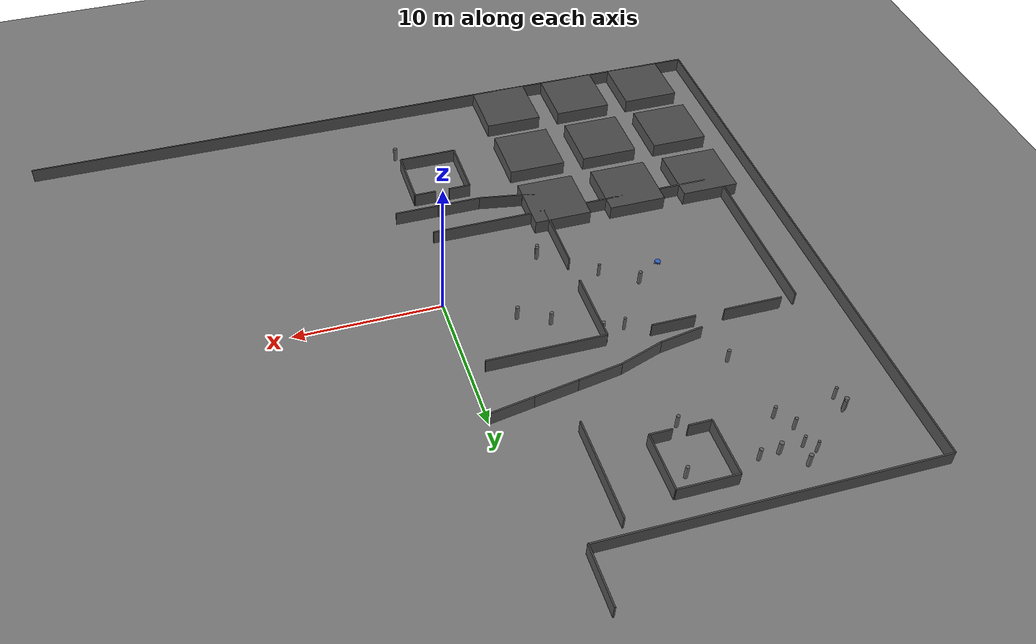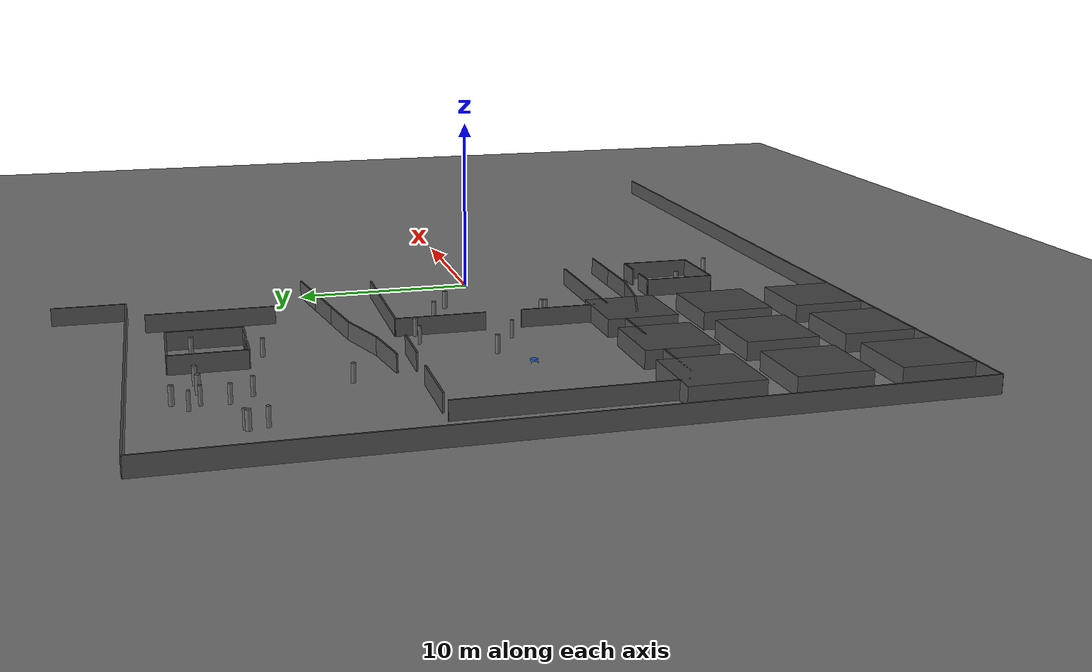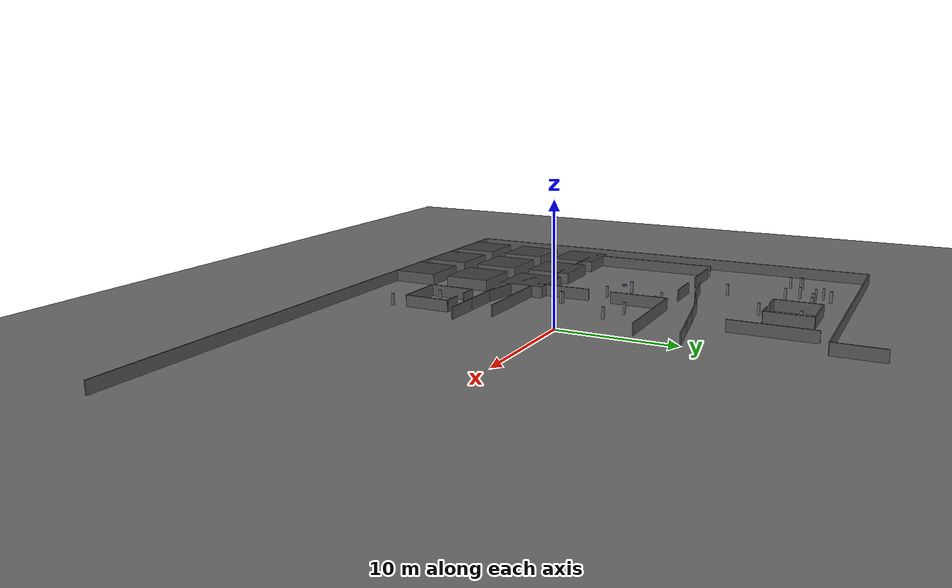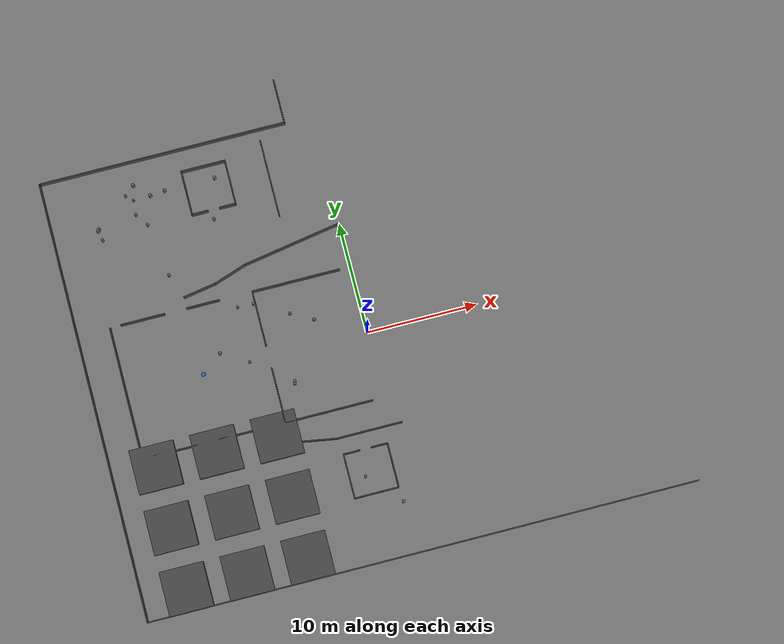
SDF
<sdf version="1.9">
 <world name="maze_large">
  <model name="ground">
   <static>true</static>
   <link name="link">
    <collision name="collision">
     <geometry><plane><normal>0 0 1</normal><size>75 60</size></plane></geometry>
    </collision>
    <visual name="visual">
     <geometry><plane><normal>0 0 1</normal><size>75 60</size></plane></geometry>
     <material><ambient>0.5 0.5 0.5 1</ambient><diffuse>0.5 0.5 0.5 1</diffuse></material>
    </visual>
   </link>
  </model>
  <model name="border_top_l">
   <static>true</static>
   <pose>-13.75 20.0 0.5 0 0 0.0</pose>
   <link name="wall">
    <collision name="collision"><geometry><box><size>22.5 0.1 1.0</size></box></geometry></collision>
    <visual name="visual">
     <geometry><box><size>22.5 0.1 1.0</size></box></geometry>
     <material><ambient>0.3 0.3 0.3 1</ambient><diffuse>0.3 0.3 0.3 1</diffuse></material>
    </visual>
   </link>
  </model>
  <model name="border_bottom">
   <static>true</static>
   <pose>0.0 -20.0 0.5 0 0 0.0</pose>
   <link name="wall">
    <collision name="collision"><geometry><box><size>50.0 0.1 1.0</size></box></geometry></collision>
    <visual name="visual">
     <geometry><box><size>50.0 0.1 1.0</size></box></geometry>
     <material><ambient>0.3 0.3 0.3 1</ambient><diffuse>0.3 0.3 0.3 1</diffuse></material>
    </visual>
   </link>
  </model>
  <model name="border_left">
   <static>true</static>
   <pose>-25.0 0.0 0.5 0 0 0.0</pose>
   <link name="wall">
    <collision name="collision"><geometry><box><size>0.1 40.0 1.0</size></box></geometry></collision>
    <visual name="visual">
     <geometry><box><size>0.1 40.0 1.0</size></box></geometry>
     <material><ambient>0.3 0.3 0.3 1</ambient><diffuse>0.3 0.3 0.3 1</diffuse></material>
    </visual>
   </link>
  </model>
  <model name="alcove_left">
   <static>true</static>
   <pose>-2.5 22.0 0.5 0 0 0.0</pose>
   <link name="wall">
    <collision name="collision"><geometry><box><size>0.1 4.0 1.0</size></box></geometry></collision>
    <visual name="visual">
     <geometry><box><size>0.1 4.0 1.0</size></box></geometry>
     <material><ambient>0.3 0.3 0.3 1</ambient><diffuse>0.3 0.3 0.3 1</diffuse></material>
    </visual>
   </link>
  </model>
  <model name="plaza_top_l">
   <static>true</static>
   <pose>-5.0 6.0 0.5 0 0 0.0</pose>
   <link name="wall">
    <collision name="collision"><geometry><box><size>8.0 0.1 1.0</size></box></geometry></collision>
    <visual name="visual">
     <geometry><box><size>8.0 0.1 1.0</size></box></geometry>
     <material><ambient>0.3 0.3 0.3 1</ambient><diffuse>0.3 0.3 0.3 1</diffuse></material>
    </visual>
   </link>
  </model>
  <model name="plaza_bot_l">
   <static>true</static>
   <pose>-5.0 -6.0 0.5 0 0 0.0</pose>
   <link name="wall">
    <collision name="collision"><geometry><box><size>8.0 0.1 1.0</size></box></geometry></collision>
    <visual name="visual">
     <geometry><box><size>8.0 0.1 1.0</size></box></geometry>
     <material><ambient>0.3 0.3 0.3 1</ambient><diffuse>0.3 0.3 0.3 1</diffuse></material>
    </visual>
   </link>
  </model>
  <model name="plaza_left_t">
   <static>true</static>
   <pose>-9.0 3.5 0.5 0 0 0.0</pose>
   <link name="wall">
    <collision name="collision"><geometry><box><size>0.1 5.0 1.0</size></box></geometry></collision>
    <visual name="visual">
     <geometry><box><size>0.1 5.0 1.0</size></box></geometry>
     <material><ambient>0.3 0.3 0.3 1</ambient><diffuse>0.3 0.3 0.3 1</diffuse></material>
    </visual>
   </link>
  </model>
  <model name="plaza_left_b">
   <static>true</static>
   <pose>-9.0 -3.5 0.5 0 0 0.0</pose>
   <link name="wall">
    <collision name="collision"><geometry><box><size>0.1 5.0 1.0</size></box></geometry></collision>
    <visual name="visual">
     <geometry><box><size>0.1 5.0 1.0</size></box></geometry>
     <material><ambient>0.3 0.3 0.3 1</ambient><diffuse>0.3 0.3 0.3 1</diffuse></material>
    </visual>
   </link>
  </model>
  <model name="plaza_p_1">
   <static>true</static>
   <pose>-4.3 2.25 0.5 0 0 0</pose>
   <link name="p">
    <collision name="c">
     <geometry><cylinder><radius>0.13</radius><length>1.0</length></cylinder></geometry>
    </collision>
    <visual name="v">
     <geometry><cylinder><radius>0.13</radius><length>1.0</length></cylinder></geometry>
     <material><ambient>0.4 0.4 0.4 1</ambient><diffuse>0.4 0.4 0.4 1</diffuse></material>
    </visual>
   </link>
  </model>
  <model name="plaza_p_3">
   <static>true</static>
   <pose>-7.3 -2.65 0.5 0 0 0</pose>
   <link name="p">
    <collision name="c">
     <geometry><cylinder><radius>0.12</radius><length>1.0</length></cylinder></geometry>
    </collision>
    <visual name="v">
     <geometry><cylinder><radius>0.12</radius><length>1.0</length></cylinder></geometry>
     <material><ambient>0.4 0.4 0.4 1</ambient><diffuse>0.4 0.4 0.4 1</diffuse></material>
    </visual>
   </link>
  </model>
  <model name="plaza_p_4">
   <static>true</static>
   <pose>-7.35 -2.85 0.5 0 0 0</pose>
   <link name="p">
    <collision name="c">
     <geometry><cylinder><radius>0.1275</radius><length>1.0</length></cylinder></geometry>
    </collision>
    <visual name="v">
     <geometry><cylinder><radius>0.1275</radius><length>1.0</length></cylinder></geometry>
     <material><ambient>0.4 0.4 0.4 1</ambient><diffuse>0.4 0.4 0.4 1</diffuse></material>
    </visual>
   </link>
  </model>
  <model name="plaza_p_9">
   <static>true</static>
   <pose>-6.25 3.3 0.5 0 0 0</pose>
   <link name="p">
    <collision name="c">
     <geometry><cylinder><radius>0.125</radius><length>1.0</length></cylinder></geometry>
    </collision>
    <visual name="v">
     <geometry><cylinder><radius>0.125</radius><length>1.0</length></cylinder></geometry>
     <material><ambient>0.4 0.4 0.4 1</ambient><diffuse>0.4 0.4 0.4 1</diffuse></material>
    </visual>
   </link>
  </model>
  <model name="corr_l_out">
   <static>true</static>
   <pose>-22.0 0.0 0.5 0 0 0.0</pose>
   <link name="wall">
    <collision name="collision"><geometry><box><size>0.1 12.0 1.0</size></box></geometry></collision>
    <visual name="visual">
     <geometry><box><size>0.1 12.0 1.0</size></box></geometry>
     <material><ambient>0.3 0.3 0.3 1</ambient><diffuse>0.3 0.3 0.3 1</diffuse></material>
    </visual>
   </link>
  </model>
  <model name="corr_l_top_l">
   <static>true</static>
   <pose>-19.0 6.0 0.5 0 0 0.0</pose>
   <link name="wall">
    <collision name="collision"><geometry><box><size>4.0 0.1 1.0</size></box></geometry></collision>
    <visual name="visual">
     <geometry><box><size>4.0 0.1 1.0</size></box></geometry>
     <material><ambient>0.3 0.3 0.3 1</ambient><diffuse>0.3 0.3 0.3 1</diffuse></material>
    </visual>
   </link>
  </model>
  <model name="corr_l_top_r">
   <static>true</static>
   <pose>-13.5 6.0 0.5 0 0 0.0</pose>
   <link name="wall">
    <collision name="collision"><geometry><box><size>3.0 0.1 1.0</size></box></geometry></collision>
    <visual name="visual">
     <geometry><box><size>3.0 0.1 1.0</size></box></geometry>
     <material><ambient>0.3 0.3 0.3 1</ambient><diffuse>0.3 0.3 0.3 1</diffuse></material>
    </visual>
   </link>
  </model>
  <model name="corr_l_bot_l">
   <static>true</static>
   <pose>-19.0 -6.0 0.5 0 0 0.0</pose>
   <link name="wall">
    <collision name="collision"><geometry><box><size>4.0 0.1 1.0</size></box></geometry></collision>
    <visual name="visual">
     <geometry><box><size>4.0 0.1 1.0</size></box></geometry>
     <material><ambient>0.3 0.3 0.3 1</ambient><diffuse>0.3 0.3 0.3 1</diffuse></material>
    </visual>
   </link>
  </model>
  <model name="corr_l_bot_r">
   <static>true</static>
   <pose>-13.5 -6.0 0.5 0 0 0.0</pose>
   <link name="wall">
    <collision name="collision"><geometry><box><size>3.0 0.1 1.0</size></box></geometry></collision>
    <visual name="visual">
     <geometry><box><size>3.0 0.1 1.0</size></box></geometry>
     <material><ambient>0.3 0.3 0.3 1</ambient><diffuse>0.3 0.3 0.3 1</diffuse></material>
    </visual>
   </link>
  </model>
  <model name="pf_left_0">
   <static>true</static>
   <pose>-15.7 16.65 0.5 0 0 0</pose>
   <link name="p">
    <collision name="c">
     <geometry><cylinder><radius>0.1425</radius><length>1.0</length></cylinder></geometry>
    </collision>
    <visual name="v">
     <geometry><cylinder><radius>0.1425</radius><length>1.0</length></cylinder></geometry>
     <material><ambient>0.4 0.4 0.4 1</ambient><diffuse>0.4 0.4 0.4 1</diffuse></material>
    </visual>
   </link>
  </model>
  <model name="pf_left_1">
   <static>true</static>
   <pose>-17.85 17.15 0.5 0 0 0</pose>
   <link name="p">
    <collision name="c">
     <geometry><cylinder><radius>0.09</radius><length>1.0</length></cylinder></geometry>
    </collision>
    <visual name="v">
     <geometry><cylinder><radius>0.09</radius><length>1.0</length></cylinder></geometry>
     <material><ambient>0.4 0.4 0.4 1</ambient><diffuse>0.4 0.4 0.4 1</diffuse></material>
    </visual>
   </link>
  </model>
  <model name="pf_left_2">
   <static>true</static>
   <pose>-20.8 14.85 0.5 0 0 0</pose>
   <link name="p">
    <collision name="c">
     <geometry><cylinder><radius>0.0925</radius><length>1.0</length></cylinder></geometry>
    </collision>
    <visual name="v">
     <geometry><cylinder><radius>0.0925</radius><length>1.0</length></cylinder></geometry>
     <material><ambient>0.4 0.4 0.4 1</ambient><diffuse>0.4 0.4 0.4 1</diffuse></material>
    </visual>
   </link>
  </model>
  <model name="pf_left_3">
   <static>true</static>
   <pose>-20.75 13.8 0.5 0 0 0</pose>
   <link name="p">
    <collision name="c">
     <geometry><cylinder><radius>0.105</radius><length>1.0</length></cylinder></geometry>
    </collision>
    <visual name="v">
     <geometry><cylinder><radius>0.105</radius><length>1.0</length></cylinder></geometry>
     <material><ambient>0.4 0.4 0.4 1</ambient><diffuse>0.4 0.4 0.4 1</diffuse></material>
    </visual>
   </link>
  </model>
  <model name="pf_left_4">
   <static>true</static>
   <pose>-17.35 15.25 0.5 0 0 0</pose>
   <link name="p">
    <collision name="c">
     <geometry><cylinder><radius>0.11</radius><length>1.0</length></cylinder></geometry>
    </collision>
    <visual name="v">
     <geometry><cylinder><radius>0.11</radius><length>1.0</length></cylinder></geometry>
     <material><ambient>0.4 0.4 0.4 1</ambient><diffuse>0.4 0.4 0.4 1</diffuse></material>
    </visual>
   </link>
  </model>
  <model name="pf_left_5">
   <static>true</static>
   <pose>-20.95 14.7 0.5 0 0 0</pose>
   <link name="p">
    <collision name="c">
     <geometry><cylinder><radius>0.145</radius><length>1.0</length></cylinder></geometry>
    </collision>
    <visual name="v">
     <geometry><cylinder><radius>0.145</radius><length>1.0</length></cylinder></geometry>
     <material><ambient>0.4 0.4 0.4 1</ambient><diffuse>0.4 0.4 0.4 1</diffuse></material>
    </visual>
   </link>
  </model>
  <model name="pf_left_6">
   <static>true</static>
   <pose>-17.25 16.6 0.5 0 0 0</pose>
   <link name="p">
    <collision name="c">
     <geometry><cylinder><radius>0.0975</radius><length>1.0</length></cylinder></geometry>
    </collision>
    <visual name="v">
     <geometry><cylinder><radius>0.0975</radius><length>1.0</length></cylinder></geometry>
     <material><ambient>0.4 0.4 0.4 1</ambient><diffuse>0.4 0.4 0.4 1</diffuse></material>
    </visual>
   </link>
  </model>
  <model name="pf_left_7">
   <static>true</static>
   <pose>-16.55 14.15 0.5 0 0 0</pose>
   <link name="p">
    <collision name="c">
     <geometry><cylinder><radius>0.11</radius><length>1.0</length></cylinder></geometry>
    </collision>
    <visual name="v">
     <geometry><cylinder><radius>0.11</radius><length>1.0</length></cylinder></geometry>
     <material><ambient>0.4 0.4 0.4 1</ambient><diffuse>0.4 0.4 0.4 1</diffuse></material>
    </visual>
   </link>
  </model>
  <model name="pf_left_8">
   <static>true</static>
   <pose>-14.35 16.75 0.5 0 0 0</pose>
   <link name="p">
    <collision name="c">
     <geometry><cylinder><radius>0.1225</radius><length>1.0</length></cylinder></geometry>
    </collision>
    <visual name="v">
     <geometry><cylinder><radius>0.1225</radius><length>1.0</length></cylinder></geometry>
     <material><ambient>0.4 0.4 0.4 1</ambient><diffuse>0.4 0.4 0.4 1</diffuse></material>
    </visual>
   </link>
  </model>
  <model name="pf_left_9">
   <static>true</static>
   <pose>-16.95 17.9 0.5 0 0 0</pose>
   <link name="p">
    <collision name="c">
     <geometry><cylinder><radius>0.135</radius><length>1.0</length></cylinder></geometry>
    </collision>
    <visual name="v">
     <geometry><cylinder><radius>0.135</radius><length>1.0</length></cylinder></geometry>
     <material><ambient>0.4 0.4 0.4 1</ambient><diffuse>0.4 0.4 0.4 1</diffuse></material>
    </visual>
   </link>
  </model>
  <model name="room_a_bot_l">
   <static>true</static>
   <pose>-11.75 14.0 0.5 0 0 0.0</pose>
   <link name="wall">
    <collision name="collision"><geometry><box><size>1.5 0.1 1.0</size></box></geometry></collision>
    <visual name="visual">
     <geometry><box><size>1.5 0.1 1.0</size></box></geometry>
     <material><ambient>0.3 0.3 0.3 1</ambient><diffuse>0.3 0.3 0.3 1</diffuse></material>
    </visual>
   </link>
  </model>
  <model name="room_a_bot_r">
   <static>true</static>
   <pose>-9.25 14.0 0.5 0 0 0.0</pose>
   <link name="wall">
    <collision name="collision"><geometry><box><size>1.5 0.1 1.0</size></box></geometry></collision>
    <visual name="visual">
     <geometry><box><size>1.5 0.1 1.0</size></box></geometry>
     <material><ambient>0.3 0.3 0.3 1</ambient><diffuse>0.3 0.3 0.3 1</diffuse></material>
    </visual>
   </link>
  </model>
  <model name="room_a_top">
   <static>true</static>
   <pose>-10.5 18.0 0.5 0 0 0.0</pose>
   <link name="wall">
    <collision name="collision"><geometry><box><size>4.0 0.1 1.0</size></box></geometry></collision>
    <visual name="visual">
     <geometry><box><size>4.0 0.1 1.0</size></box></geometry>
     <material><ambient>0.3 0.3 0.3 1</ambient><diffuse>0.3 0.3 0.3 1</diffuse></material>
    </visual>
   </link>
  </model>
  <model name="room_a_left">
   <static>true</static>
   <pose>-12.5 16.0 0.5 0 0 0.0</pose>
   <link name="wall">
    <collision name="collision"><geometry><box><size>0.1 4.0 1.0</size></box></geometry></collision>
    <visual name="visual">
     <geometry><box><size>0.1 4.0 1.0</size></box></geometry>
     <material><ambient>0.3 0.3 0.3 1</ambient><diffuse>0.3 0.3 0.3 1</diffuse></material>
    </visual>
   </link>
  </model>
  <model name="room_a_right">
   <static>true</static>
   <pose>-8.5 16.0 0.5 0 0 0.0</pose>
   <link name="wall">
    <collision name="collision"><geometry><box><size>0.1 4.0 1.0</size></box></geometry></collision>
    <visual name="visual">
     <geometry><box><size>0.1 4.0 1.0</size></box></geometry>
     <material><ambient>0.3 0.3 0.3 1</ambient><diffuse>0.3 0.3 0.3 1</diffuse></material>
    </visual>
   </link>
  </model>
  <model name="room_a_pillar">
   <static>true</static>
   <pose>-9.75 16.75 0.5 0 0 0</pose>
   <link name="p">
    <collision name="c">
     <geometry><cylinder><radius>0.125</radius><length>1.0</length></cylinder></geometry>
    </collision>
    <visual name="v">
     <geometry><cylinder><radius>0.125</radius><length>1.0</length></cylinder></geometry>
     <material><ambient>0.4 0.4 0.4 1</ambient><diffuse>0.4 0.4 0.4 1</diffuse></material>
    </visual>
   </link>
  </model>
  <model name="room_c_bot">
   <static>true</static>
   <pose>-2.75 -14.0 0.5 0 0 0.0</pose>
   <link name="wall">
    <collision name="collision"><geometry><box><size>4.0 0.1 1.0</size></box></geometry></collision>
    <visual name="visual">
     <geometry><box><size>4.0 0.1 1.0</size></box></geometry>
     <material><ambient>0.3 0.3 0.3 1</ambient><diffuse>0.3 0.3 0.3 1</diffuse></material>
    </visual>
   </link>
  </model>
  <model name="room_c_top_l">
   <static>true</static>
   <pose>-4.0 -10.0 0.5 0 0 0.0</pose>
   <link name="wall">
    <collision name="collision"><geometry><box><size>1.5 0.1 1.0</size></box></geometry></collision>
    <visual name="visual">
     <geometry><box><size>1.5 0.1 1.0</size></box></geometry>
     <material><ambient>0.3 0.3 0.3 1</ambient><diffuse>0.3 0.3 0.3 1</diffuse></material>
    </visual>
   </link>
  </model>
  <model name="room_c_top_r">
   <static>true</static>
   <pose>-1.5 -10.0 0.5 0 0 0.0</pose>
   <link name="wall">
    <collision name="collision"><geometry><box><size>1.5 0.1 1.0</size></box></geometry></collision>
    <visual name="visual">
     <geometry><box><size>1.5 0.1 1.0</size></box></geometry>
     <material><ambient>0.3 0.3 0.3 1</ambient><diffuse>0.3 0.3 0.3 1</diffuse></material>
    </visual>
   </link>
  </model>
  <model name="room_c_left">
   <static>true</static>
   <pose>-4.75 -12.0 0.5 0 0 0.0</pose>
   <link name="wall">
    <collision name="collision"><geometry><box><size>0.1 4.0 1.0</size></box></geometry></collision>
    <visual name="visual">
     <geometry><box><size>0.1 4.0 1.0</size></box></geometry>
     <material><ambient>0.3 0.3 0.3 1</ambient><diffuse>0.3 0.3 0.3 1</diffuse></material>
    </visual>
   </link>
  </model>
  <model name="room_c_right">
   <static>true</static>
   <pose>-0.75 -12.0 0.5 0 0 0.0</pose>
   <link name="wall">
    <collision name="collision"><geometry><box><size>0.1 4.0 1.0</size></box></geometry></collision>
    <visual name="visual">
     <geometry><box><size>0.1 4.0 1.0</size></box></geometry>
     <material><ambient>0.3 0.3 0.3 1</ambient><diffuse>0.3 0.3 0.3 1</diffuse></material>
    </visual>
   </link>
  </model>
  <model name="room_c_pillar">
   <static>true</static>
   <pose>-3.35 -12.35 0.5 0 0 0</pose>
   <link name="p">
    <collision name="c">
     <geometry><cylinder><radius>0.125</radius><length>1.0</length></cylinder></geometry>
    </collision>
    <visual name="v">
     <geometry><cylinder><radius>0.125</radius><length>1.0</length></cylinder></geometry>
     <material><ambient>0.4 0.4 0.4 1</ambient><diffuse>0.4 0.4 0.4 1</diffuse></material>
    </visual>
   </link>
  </model>
  <model name="warehouse_left">
   <static>true</static>
   <pose>-5.0 15.5 0.5 0 0 0.0</pose>
   <link name="wall">
    <collision name="collision"><geometry><box><size>0.1 7.0 1.0</size></box></geometry></collision>
    <visual name="visual">
     <geometry><box><size>0.1 7.0 1.0</size></box></geometry>
     <material><ambient>0.3 0.3 0.3 1</ambient><diffuse>0.3 0.3 0.3 1</diffuse></material>
    </visual>
   </link>
  </model>
  <model name="grid_l_0_0">
   <static>true</static>
   <pose>-21.0 -18.0 0.5 0 0 0.0</pose>
   <link name="wall">
    <collision name="collision"><geometry><box><size>4.0 4.0 1.0</size></box></geometry></collision>
    <visual name="visual">
     <geometry><box><size>4.0 4.0 1.0</size></box></geometry>
     <material><ambient>0.3 0.3 0.3 1</ambient><diffuse>0.3 0.3 0.3 1</diffuse></material>
    </visual>
   </link>
  </model>
  <model name="grid_l_0_1">
   <static>true</static>
   <pose>-15.5 -18.0 0.5 0 0 0.0</pose>
   <link name="wall">
    <collision name="collision"><geometry><box><size>4.0 4.0 1.0</size></box></geometry></collision>
    <visual name="visual">
     <geometry><box><size>4.0 4.0 1.0</size></box></geometry>
     <material><ambient>0.3 0.3 0.3 1</ambient><diffuse>0.3 0.3 0.3 1</diffuse></material>
    </visual>
   </link>
  </model>
  <model name="grid_l_0_2">
   <static>true</static>
   <pose>-10.0 -18.0 0.5 0 0 0.0</pose>
   <link name="wall">
    <collision name="collision"><geometry><box><size>4.0 4.0 1.0</size></box></geometry></collision>
    <visual name="visual">
     <geometry><box><size>4.0 4.0 1.0</size></box></geometry>
     <material><ambient>0.3 0.3 0.3 1</ambient><diffuse>0.3 0.3 0.3 1</diffuse></material>
    </visual>
   </link>
  </model>
  <model name="grid_l_1_0">
   <static>true</static>
   <pose>-21.0 -12.5 0.5 0 0 0.0</pose>
   <link name="wall">
    <collision name="collision"><geometry><box><size>4.0 4.0 1.0</size></box></geometry></collision>
    <visual name="visual">
     <geometry><box><size>4.0 4.0 1.0</size></box></geometry>
     <material><ambient>0.3 0.3 0.3 1</ambient><diffuse>0.3 0.3 0.3 1</diffuse></material>
    </visual>
   </link>
  </model>
  <model name="grid_l_1_1">
   <static>true</static>
   <pose>-15.5 -12.5 0.5 0 0 0.0</pose>
   <link name="wall">
    <collision name="collision"><geometry><box><size>4.0 4.0 1.0</size></box></geometry></collision>
    <visual name="visual">
     <geometry><box><size>4.0 4.0 1.0</size></box></geometry>
     <material><ambient>0.3 0.3 0.3 1</ambient><diffuse>0.3 0.3 0.3 1</diffuse></material>
    </visual>
   </link>
  </model>
  <model name="grid_l_1_2">
   <static>true</static>
   <pose>-10.0 -12.5 0.5 0 0 0.0</pose>
   <link name="wall">
    <collision name="collision"><geometry><box><size>4.0 4.0 1.0</size></box></geometry></collision>
    <visual name="visual">
     <geometry><box><size>4.0 4.0 1.0</size></box></geometry>
     <material><ambient>0.3 0.3 0.3 1</ambient><diffuse>0.3 0.3 0.3 1</diffuse></material>
    </visual>
   </link>
  </model>
  <model name="grid_l_2_0">
   <static>true</static>
   <pose>-21.0 -7.0 0.5 0 0 0.0</pose>
   <link name="wall">
    <collision name="collision"><geometry><box><size>4.0 4.0 1.0</size></box></geometry></collision>
    <visual name="visual">
     <geometry><box><size>4.0 4.0 1.0</size></box></geometry>
     <material><ambient>0.3 0.3 0.3 1</ambient><diffuse>0.3 0.3 0.3 1</diffuse></material>
    </visual>
   </link>
  </model>
  <model name="grid_l_2_1">
   <static>true</static>
   <pose>-15.5 -7.0 0.5 0 0 0.0</pose>
   <link name="wall">
    <collision name="collision"><geometry><box><size>4.0 4.0 1.0</size></box></geometry></collision>
    <visual name="visual">
     <geometry><box><size>4.0 4.0 1.0</size></box></geometry>
     <material><ambient>0.3 0.3 0.3 1</ambient><diffuse>0.3 0.3 0.3 1</diffuse></material>
    </visual>
   </link>
  </model>
  <model name="grid_l_2_2">
   <static>true</static>
   <pose>-10.0 -7.0 0.5 0 0 0.0</pose>
   <link name="wall">
    <collision name="collision"><geometry><box><size>4.0 4.0 1.0</size></box></geometry></collision>
    <visual name="visual">
     <geometry><box><size>4.0 4.0 1.0</size></box></geometry>
     <material><ambient>0.3 0.3 0.3 1</ambient><diffuse>0.3 0.3 0.3 1</diffuse></material>
    </visual>
   </link>
  </model>
  <model name="curve_ul_0">
   <static>true</static>
   <pose>-13.5 7.25 0.5 0 0 0.1651486774146268</pose>
   <link name="wall">
    <collision name="collision">
     <geometry><box><size>3.0413812651491097 0.1 1.0</size></box></geometry>
    </collision>
    <visual name="visual">
     <geometry><box><size>3.0413812651491097 0.1 1.0</size></box></geometry>
     <material><ambient>0.3 0.3 0.3 1</ambient><diffuse>0.3 0.3 0.3 1</diffuse></material>
    </visual>
   </link>
  </model>
  <model name="curve_ul_1">
   <static>true</static>
   <pose>-10.5 8.0 0.5 0 0 0.3217505543966422</pose>
   <link name="wall">
    <collision name="collision">
     <geometry><box><size>3.1622776601683795 0.1 1.0</size></box></geometry>
    </collision>
    <visual name="visual">
     <geometry><box><size>3.1622776601683795 0.1 1.0</size></box></geometry>
     <material><ambient>0.3 0.3 0.3 1</ambient><diffuse>0.3 0.3 0.3 1</diffuse></material>
    </visual>
   </link>
  </model>
  <model name="curve_ul_2">
   <static>true</static>
   <pose>-7.5 8.75 0.5 0 0 0.1651486774146268</pose>
   <link name="wall">
    <collision name="collision">
     <geometry><box><size>3.0413812651491097 0.1 1.0</size></box></geometry>
    </collision>
    <visual name="visual">
     <geometry><box><size>3.0413812651491097 0.1 1.0</size></box></geometry>
     <material><ambient>0.3 0.3 0.3 1</ambient><diffuse>0.3 0.3 0.3 1</diffuse></material>
    </visual>
   </link>
  </model>
  <model name="curve_ul_3">
   <static>true</static>
   <pose>-4.5 9.25 0.5 0 0 0.1651486774146268</pose>
   <link name="wall">
    <collision name="collision">
     <geometry><box><size>3.0413812651491097 0.1 1.0</size></box></geometry>
    </collision>
    <visual name="visual">
     <geometry><box><size>3.0413812651491097 0.1 1.0</size></box></geometry>
     <material><ambient>0.3 0.3 0.3 1</ambient><diffuse>0.3 0.3 0.3 1</diffuse></material>
    </visual>
   </link>
  </model>
  <model name="curve_ul_4">
   <static>true</static>
   <pose>-1.5 9.75 0.5 0 0 0.1651486774146268</pose>
   <link name="wall">
    <collision name="collision">
     <geometry><box><size>3.0413812651491097 0.1 1.0</size></box></geometry>
    </collision>
    <visual name="visual">
     <geometry><box><size>3.0413812651491097 0.1 1.0</size></box></geometry>
     <material><ambient>0.3 0.3 0.3 1</ambient><diffuse>0.3 0.3 0.3 1</diffuse></material>
    </visual>
   </link>
  </model>
  <model name="curve_lo_0">
   <static>true</static>
   <pose>-9.5 -7.5 0.5 0 0 -0.3217505543966422</pose>
   <link name="wall">
    <collision name="collision">
     <geometry><box><size>3.1622776601683795 0.1 1.0</size></box></geometry>
    </collision>
    <visual name="visual">
     <geometry><box><size>3.1622776601683795 0.1 1.0</size></box></geometry>
     <material><ambient>0.3 0.3 0.3 1</ambient><diffuse>0.3 0.3 0.3 1</diffuse></material>
    </visual>
   </link>
  </model>
  <model name="curve_lo_1">
   <static>true</static>
   <pose>-6.5 -8.25 0.5 0 0 -0.1651486774146268</pose>
   <link name="wall">
    <collision name="collision">
     <geometry><box><size>3.0413812651491097 0.1 1.0</size></box></geometry>
    </collision>
    <visual name="visual">
     <geometry><box><size>3.0413812651491097 0.1 1.0</size></box></geometry>
     <material><ambient>0.3 0.3 0.3 1</ambient><diffuse>0.3 0.3 0.3 1</diffuse></material>
    </visual>
   </link>
  </model>
  <model name="curve_lo_2">
   <static>true</static>
   <pose>-3.5 -8.5 0.5 0 0 0.0</pose>
   <link name="wall">
    <collision name="collision"><geometry><box><size>3.0 0.1 1.0</size></box></geometry></collision>
    <visual name="visual">
     <geometry><box><size>3.0 0.1 1.0</size></box></geometry>
     <material><ambient>0.3 0.3 0.3 1</ambient><diffuse>0.3 0.3 0.3 1</diffuse></material>
    </visual>
   </link>
  </model>
  <model name="curve_lo_3">
   <static>true</static>
   <pose>-0.5 -8.5 0.5 0 0 0.0</pose>
   <link name="wall">
    <collision name="collision"><geometry><box><size>3.0 0.1 1.0</size></box></geometry></collision>
    <visual name="visual">
     <geometry><box><size>3.0 0.1 1.0</size></box></geometry>
     <material><ambient>0.3 0.3 0.3 1</ambient><diffuse>0.3 0.3 0.3 1</diffuse></material>
    </visual>
   </link>
  </model>
  <model name="extra_2">
   <static>true</static>
   <pose>-10.6 5.0 0.5 0 0 0</pose>
   <link name="p">
    <collision name="c">
     <geometry><cylinder><radius>0.095</radius><length>1.0</length></cylinder></geometry>
    </collision>
    <visual name="v">
     <geometry><cylinder><radius>0.095</radius><length>1.0</length></cylinder></geometry>
     <material><ambient>0.4 0.4 0.4 1</ambient><diffuse>0.4 0.4 0.4 1</diffuse></material>
    </visual>
   </link>
  </model>
  <model name="extra_3">
   <static>true</static>
   <pose>-10.75 0.0 0.5 0 0 0</pose>
   <link name="p">
    <collision name="c">
     <geometry><cylinder><radius>0.0975</radius><length>1.0</length></cylinder></geometry>
    </collision>
    <visual name="v">
     <geometry><cylinder><radius>0.0975</radius><length>1.0</length></cylinder></geometry>
     <material><ambient>0.4 0.4 0.4 1</ambient><diffuse>0.4 0.4 0.4 1</diffuse></material>
    </visual>
   </link>
  </model>
  <model name="extra_4">
   <static>true</static>
   <pose>-9.15 4.95 0.5 0 0 0</pose>
   <link name="p">
    <collision name="c">
     <geometry><cylinder><radius>0.125</radius><length>1.0</length></cylinder></geometry>
    </collision>
    <visual name="v">
     <geometry><cylinder><radius>0.125</radius><length>1.0</length></cylinder></geometry>
     <material><ambient>0.4 0.4 0.4 1</ambient><diffuse>0.4 0.4 0.4 1</diffuse></material>
    </visual>
   </link>
  </model>
  <model name="extra_5">
   <static>true</static>
   <pose>-15.8 9.3 0.5 0 0 0</pose>
   <link name="p">
    <collision name="c">
     <geometry><cylinder><radius>0.12</radius><length>1.0</length></cylinder></geometry>
    </collision>
    <visual name="v">
     <geometry><cylinder><radius>0.12</radius><length>1.0</length></cylinder></geometry>
     <material><ambient>0.4 0.4 0.4 1</ambient><diffuse>0.4 0.4 0.4 1</diffuse></material>
    </visual>
   </link>
  </model>
  <model name="extra_7">
   <static>true</static>
   <pose>-0.65 -15.3 0.5 0 0 0</pose>
   <link name="p">
    <collision name="c">
     <geometry><cylinder><radius>0.135</radius><length>1.0</length></cylinder></geometry>
    </collision>
    <visual name="v">
     <geometry><cylinder><radius>0.135</radius><length>1.0</length></cylinder></geometry>
     <material><ambient>0.4 0.4 0.4 1</ambient><diffuse>0.4 0.4 0.4 1</diffuse></material>
    </visual>
   </link>
  </model>
  <model name="extra_8">
   <static>true</static>
   <pose>-10.7 13.2 0.5 0 0 0</pose>
   <link name="p">
    <collision name="c">
     <geometry><cylinder><radius>0.115</radius><length>1.0</length></cylinder></geometry>
    </collision>
    <visual name="v">
     <geometry><cylinder><radius>0.115</radius><length>1.0</length></cylinder></geometry>
     <material><ambient>0.4 0.4 0.4 1</ambient><diffuse>0.4 0.4 0.4 1</diffuse></material>
    </visual>
   </link>
  </model>
  <model name="extra_9">
   <static>true</static>
   <pose>-13.1 1.4 0.5 0 0 0</pose>
   <link name="p">
    <collision name="c">
     <geometry><cylinder><radius>0.1325</radius><length>1.0</length></cylinder></geometry>
    </collision>
    <visual name="v">
     <geometry><cylinder><radius>0.1325</radius><length>1.0</length></cylinder></geometry>
     <material><ambient>0.4 0.4 0.4 1</ambient><diffuse>0.4 0.4 0.4 1</diffuse></material>
    </visual>
   </link>
  </model>
  <include><uri>model://simple_robot</uri><pose>-15.0 0 0.05 0 0 0</pose></include>
 </world>
</sdf>
